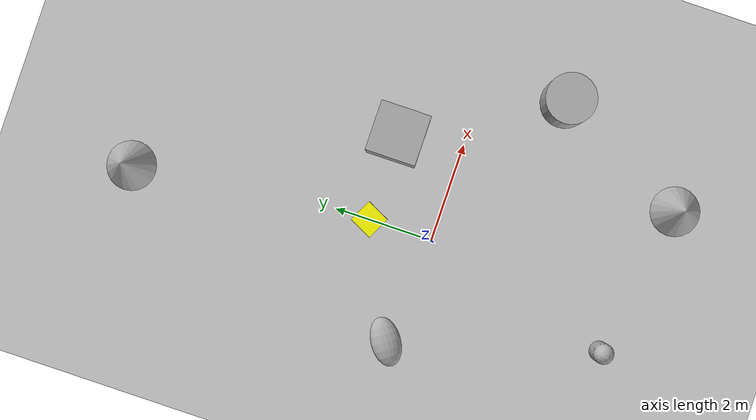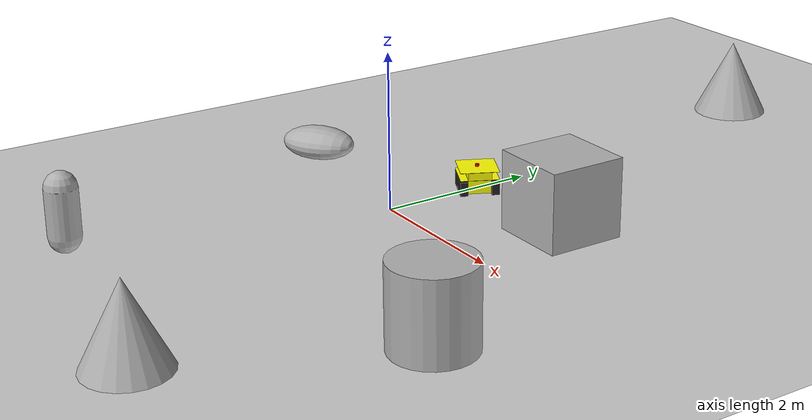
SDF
<sdf version='1.10'>
  <world name='empty'>
    <physics name='1ms' type='ignored'>
      <max_step_size>0.001</max_step_size>
      <real_time_factor>1</real_time_factor>
      <real_time_update_rate>1000</real_time_update_rate>
    </physics>
    <plugin name='gz::sim::systems::Physics' filename='gz-sim-physics-system'/>
    <plugin name='gz::sim::systems::UserCommands' filename='gz-sim-user-commands-system'/>
    <plugin name='gz::sim::systems::SceneBroadcaster' filename='gz-sim-scene-broadcaster-system'/>
    <plugin name='gz::sim::systems::Contact' filename='gz-sim-contact-system'/>
    <gravity>0 0 -9.8000000000000007</gravity>
    <magnetic_field>5.5644999999999998e-06 2.2875799999999999e-05 -4.2388400000000002e-05</magnetic_field>
    <atmosphere type='adiabatic'/>
    <scene>
      <ambient>0.400000006 0.400000006 0.400000006 1</ambient>
      <background>0.699999988 0.699999988 0.699999988 1</background>
      <shadows>true</shadows>
    </scene>
    <model name='ground_plane'>
      <static>true</static>
      <link name='link'>
        <collision name='collision'>
          <geometry>
            <plane>
              <normal>0 0 1</normal>
              <size>100 100</size>
            </plane>
          </geometry>
          <surface>
            <friction>
              <ode/>
            </friction>
            <bounce/>
            <contact/>
          </surface>
        </collision>
        <visual name='visual'>
          <geometry>
            <plane>
              <normal>0 0 1</normal>
              <size>100 100</size>
            </plane>
          </geometry>
          <material>
            <ambient>0.800000012 0.800000012 0.800000012 1</ambient>
            <diffuse>0.800000012 0.800000012 0.800000012 1</diffuse>
            <specular>0.800000012 0.800000012 0.800000012 1</specular>
          </material>
        </visual>
        <pose>0 0 0 0 0 0</pose>
        <inertial>
          <pose>0 0 0 0 0 0</pose>
          <mass>1</mass>
          <inertia>
            <ixx>1</ixx>
            <ixy>0</ixy>
            <ixz>0</ixz>
            <iyy>1</iyy>
            <iyz>0</iyz>
            <izz>1</izz>
          </inertia>
        </inertial>
        <enable_wind>false</enable_wind>
      </link>
      <pose>0 0 0 0 0 0</pose>
      <self_collide>false</self_collide>
    </model>
    <model name='my_robot'>
      <link name='base_footprint'>
        <inertial>
          <pose>0 0 0.1119644670050762 0 0 0</pose>
          <mass>5.9100000000000001</mass>
          <inertia>
            <ixx>0.43630455253807099</ixx>
            <ixy>0</ixy>
            <ixz>0</ixz>
            <iyy>0.43630455253807099</iyy>
            <iyz>0</iyz>
            <izz>0.220003</izz>
          </inertia>
        </inertial>
        <collision name='base_footprint_fixed_joint_lump__base_link_collision'>
          <pose>0 0 0.091000000000000011 0 0 0</pose>
          <geometry>
            <box>
              <size>0.315 0.27000000000000002 0.17999999999999999</size>
            </box>
          </geometry>
          <surface>
            <friction>
              <ode/>
            </friction>
            <bounce/>
            <contact/>
          </surface>
        </collision>
        <collision name='base_footprint_fixed_joint_lump__imu_link_collision_1'>
          <pose>0 0 0.091000000000000011 0 0 0</pose>
          <geometry>
            <box>
              <size>0.02 0.02 0.02</size>
            </box>
          </geometry>
          <surface>
            <contact>
              <ode/>
            </contact>
            <friction>
              <ode/>
            </friction>
            <bounce/>
          </surface>
        </collision>
        <collision name='base_footprint_fixed_joint_lump__top_plate_collision_2'>
          <pose>0 0 0.1925 0 0 0</pose>
          <geometry>
            <box>
              <size>0.5 0.5 0.0030000000000000001</size>
            </box>
          </geometry>
          <surface>
            <friction>
              <ode/>
            </friction>
            <bounce/>
            <contact/>
          </surface>
        </collision>
        <collision name='base_footprint_fixed_joint_lump__lidar_stand_collision_3'>
          <pose>0 0 0.24400000000000011 0 0 0</pose>
          <geometry>
            <box>
              <size>0.5 0.29999999999999999 0.10000000000000001</size>
            </box>
          </geometry>
          <surface>
            <friction>
              <ode/>
            </friction>
            <bounce/>
            <contact/>
          </surface>
        </collision>
        <collision name='base_footprint_fixed_joint_lump__lidar_plate_collision_4'>
          <pose>0 0 0.29549999999999998 0 0 0</pose>
          <geometry>
            <box>
              <size>0.5 0.5 0.0030000000000000001</size>
            </box>
          </geometry>
          <surface>
            <friction>
              <ode/>
            </friction>
            <bounce/>
            <contact/>
          </surface>
        </collision>
        <collision name='base_footprint_fixed_joint_lump__lidar_link_collision_5'>
          <pose>0 0 0.31200000000000011 0 0 0</pose>
          <geometry>
            <cylinder>
              <length>0.029999999999999999</length>
              <radius>0.025000000000000001</radius>
            </cylinder>
          </geometry>
          <surface>
            <contact>
              <ode/>
            </contact>
            <friction>
              <ode/>
            </friction>
            <bounce/>
          </surface>
        </collision>
        <visual name='base_footprint_fixed_joint_lump__base_link_visual'>
          <pose>0 0 0.091000000000000011 0 0 0</pose>
          <geometry>
            <box>
              <size>0.34999999999999998 0.29999999999999999 0.20000000000000001</size>
            </box>
          </geometry>
          <material>
            <diffuse>1 1 0 1</diffuse>
            <ambient>1 1 0 1</ambient>
          </material>
        </visual>
        <visual name='base_footprint_fixed_joint_lump__left_track_visual_1'>
          <pose>0 0.20000000000000001 0.081000000000000003 0 0 0</pose>
          <geometry>
            <box>
              <size>0.5 0.10000000000000001 0.17999999999999999</size>
            </box>
          </geometry>
          <material>
            <diffuse>0.125 0.125 0.125 1</diffuse>
            <ambient>0.125 0.125 0.125 1</ambient>
          </material>
        </visual>
        <visual name='base_footprint_fixed_joint_lump__right_track_visual_2'>
          <pose>0 -0.20000000000000001 0.081000000000000003 0 0 0</pose>
          <geometry>
            <box>
              <size>0.5 0.10000000000000001 0.17999999999999999</size>
            </box>
          </geometry>
          <material>
            <diffuse>0.125 0.125 0.125 1</diffuse>
            <ambient>0.125 0.125 0.125 1</ambient>
          </material>
        </visual>
        <visual name='base_footprint_fixed_joint_lump__imu_link_visual_3'>
          <pose>0 0 0.091000000000000011 0 0 0</pose>
          <geometry>
            <box>
              <size>0.02 0.02 0.02</size>
            </box>
          </geometry>
          <material>
            <diffuse>1 0 0 1</diffuse>
            <ambient>1 0 0 1</ambient>
          </material>
        </visual>
        <visual name='base_footprint_fixed_joint_lump__top_plate_visual_4'>
          <pose>0 0 0.1925 0 0 0</pose>
          <geometry>
            <box>
              <size>0.5 0.5 0.0030000000000000001</size>
            </box>
          </geometry>
          <material>
            <diffuse>1 1 0 1</diffuse>
            <ambient>1 1 0 1</ambient>
          </material>
        </visual>
        <visual name='base_footprint_fixed_joint_lump__lidar_stand_visual_5'>
          <pose>0 0 0.24400000000000011 0 0 0</pose>
          <geometry>
            <box>
              <size>0.5 0.29999999999999999 0.10000000000000001</size>
            </box>
          </geometry>
          <material>
            <diffuse>1 1 0 1</diffuse>
            <ambient>1 1 0 1</ambient>
          </material>
        </visual>
        <visual name='base_footprint_fixed_joint_lump__lidar_plate_visual_6'>
          <pose>0 0 0.29549999999999998 0 0 0</pose>
          <geometry>
            <box>
              <size>0.5 0.5 0.0030000000000000001</size>
            </box>
          </geometry>
          <material>
            <diffuse>1 1 0 1</diffuse>
            <ambient>1 1 0 1</ambient>
          </material>
        </visual>
        <visual name='base_footprint_fixed_joint_lump__lidar_link_visual_7'>
          <pose>0 0 0.31200000000000011 0 0 0</pose>
          <geometry>
            <cylinder>
              <length>0.029999999999999999</length>
              <radius>0.025000000000000001</radius>
            </cylinder>
          </geometry>
          <material>
            <diffuse>1 0 0 1</diffuse>
            <ambient>1 0 0 1</ambient>
          </material>
        </visual>
        <sensor name='imu_sensor' type='imu'>
          <pose>0 0 0.090999999999999998 0 0 0</pose>
          <topic>imu</topic>
          <update_rate>50</update_rate>
          <enable_metrics>false</enable_metrics>
          <imu>
            <orientation_reference_frame>
              <localization>CUSTOM</localization>
              <custom_rpy>0 0 0</custom_rpy>
              <grav_dir_x>1 0 0</grav_dir_x>
            </orientation_reference_frame>
            <angular_velocity>
              <x>
                <noise type='none'>
                  <mean>0</mean>
                  <stddev>0</stddev>
                  <bias_mean>0</bias_mean>
                  <bias_stddev>0</bias_stddev>
                  <dynamic_bias_stddev>0</dynamic_bias_stddev>
                  <dynamic_bias_correlation_time>0</dynamic_bias_correlation_time>
                  <precision>0</precision>
                </noise>
              </x>
              <y>
                <noise type='none'>
                  <mean>0</mean>
                  <stddev>0</stddev>
                  <bias_mean>0</bias_mean>
                  <bias_stddev>0</bias_stddev>
                  <dynamic_bias_stddev>0</dynamic_bias_stddev>
                  <dynamic_bias_correlation_time>0</dynamic_bias_correlation_time>
                  <precision>0</precision>
                </noise>
              </y>
              <z>
                <noise type='none'>
                  <mean>0</mean>
                  <stddev>0</stddev>
                  <bias_mean>0</bias_mean>
                  <bias_stddev>0</bias_stddev>
                  <dynamic_bias_stddev>0</dynamic_bias_stddev>
                  <dynamic_bias_correlation_time>0</dynamic_bias_correlation_time>
                  <precision>0</precision>
                </noise>
              </z>
            </angular_velocity>
            <linear_acceleration>
              <x>
                <noise type='none'>
                  <mean>0</mean>
                  <stddev>0</stddev>
                  <bias_mean>0</bias_mean>
                  <bias_stddev>0</bias_stddev>
                  <dynamic_bias_stddev>0</dynamic_bias_stddev>
                  <dynamic_bias_correlation_time>0</dynamic_bias_correlation_time>
                  <precision>0</precision>
                </noise>
              </x>
              <y>
                <noise type='none'>
                  <mean>0</mean>
                  <stddev>0</stddev>
                  <bias_mean>0</bias_mean>
                  <bias_stddev>0</bias_stddev>
                  <dynamic_bias_stddev>0</dynamic_bias_stddev>
                  <dynamic_bias_correlation_time>0</dynamic_bias_correlation_time>
                  <precision>0</precision>
                </noise>
              </y>
              <z>
                <noise type='none'>
                  <mean>0</mean>
                  <stddev>0</stddev>
                  <bias_mean>0</bias_mean>
                  <bias_stddev>0</bias_stddev>
                  <dynamic_bias_stddev>0</dynamic_bias_stddev>
                  <dynamic_bias_correlation_time>0</dynamic_bias_correlation_time>
                  <precision>0</precision>
                </noise>
              </z>
            </linear_acceleration>
            <enable_orientation>true</enable_orientation>
          </imu>
        </sensor>
        <sensor name='lidar_link' type='gpu_lidar'>
          <pose>0 0 0.312 0 0 0</pose>
          <topic>scan</topic>
          <update_rate>10</update_rate>
          <enable_metrics>false</enable_metrics>
          <lidar>
            <scan>
              <horizontal>
                <samples>360</samples>
                <resolution>1</resolution>
                <min_angle>-3.1400000000000001</min_angle>
                <max_angle>3.1400000000000001</max_angle>
              </horizontal>
              <vertical>
                <samples>1</samples>
                <min_angle>0</min_angle>
                <max_angle>0</max_angle>
                <resolution>1</resolution>
              </vertical>
            </scan>
            <range>
              <min>0.10000000000000001</min>
              <max>12</max>
              <resolution>0</resolution>
            </range>
            <noise>
              <type>none</type>
              <mean>0</mean>
              <stddev>0</stddev>
            </noise>
            <visibility_mask>4294967295</visibility_mask>
          </lidar>
        </sensor>
        <pose>0 0 0 0 0 0</pose>
        <enable_wind>false</enable_wind>
      </link>
      <joint name='left_wheel_joint' type='revolute'>
        <pose>0 0 0 0 0 0</pose>
        <parent>base_footprint</parent>
        <child>left_wheel</child>
        <axis>
          <xyz>0 1 0</xyz>
          <limit>
            <lower>-inf</lower>
            <upper>inf</upper>
            <effort>inf</effort>
            <velocity>inf</velocity>
            <stiffness>100000000</stiffness>
            <dissipation>1</dissipation>
          </limit>
          <dynamics>
            <spring_reference>0</spring_reference>
            <spring_stiffness>0</spring_stiffness>
            <damping>0</damping>
            <friction>0</friction>
          </dynamics>
        </axis>
      </joint>
      <link name='left_wheel'>
        <pose>0 0.25049999999999972 0.021000000000000005 3.1415926535897931 -0.87963297954926678 -3.1415926535897931</pose>
        <inertial>
          <pose>0 0 0 0 0 0</pose>
          <mass>0.5</mass>
          <inertia>
            <ixx>0.001</ixx>
            <ixy>0</ixy>
            <ixz>0</ixz>
            <iyy>0.001</iyy>
            <iyz>0</iyz>
            <izz>0.001</izz>
          </inertia>
        </inertial>
        <collision name='left_wheel_collision'>
          <pose>0 0 0 1.5707963267948959 0 0</pose>
          <geometry>
            <cylinder>
              <length>0.001</length>
              <radius>0.021000000000000001</radius>
            </cylinder>
          </geometry>
          <surface>
            <friction>
              <ode/>
            </friction>
            <bounce/>
            <contact/>
          </surface>
        </collision>
        <visual name='left_wheel_visual'>
          <pose>0 0 0 1.5707963267948959 0 0</pose>
          <geometry>
            <cylinder>
              <length>0.001</length>
              <radius>0.021000000000000001</radius>
            </cylinder>
          </geometry>
          <material>
            <diffuse>1 1 1 1</diffuse>
            <ambient>1 1 1 1</ambient>
          </material>
        </visual>
        <enable_wind>false</enable_wind>
      </link>
      <joint name='right_wheel_joint' type='revolute'>
        <pose>0 0 0 0 0 0</pose>
        <parent>base_footprint</parent>
        <child>right_wheel</child>
        <axis>
          <xyz>0 1 0</xyz>
          <limit>
            <lower>-inf</lower>
            <upper>inf</upper>
            <effort>inf</effort>
            <velocity>inf</velocity>
            <stiffness>100000000</stiffness>
            <dissipation>1</dissipation>
          </limit>
          <dynamics>
            <spring_reference>0</spring_reference>
            <spring_stiffness>0</spring_stiffness>
            <damping>0</damping>
            <friction>0</friction>
          </dynamics>
        </axis>
      </joint>
      <link name='right_wheel'>
        <pose>0 -0.25050000000000039 0.021000000000000001 -3.1415926535897931 0.93274209984940137 -3.1415926535897931</pose>
        <inertial>
          <pose>0 0 0 0 0 0</pose>
          <mass>0.5</mass>
          <inertia>
            <ixx>0.001</ixx>
            <ixy>0</ixy>
            <ixz>0</ixz>
            <iyy>0.001</iyy>
            <iyz>0</iyz>
            <izz>0.001</izz>
          </inertia>
        </inertial>
        <collision name='right_wheel_collision'>
          <pose>0 0 0 1.5707963267948959 0 0</pose>
          <geometry>
            <cylinder>
              <length>0.001</length>
              <radius>0.021000000000000001</radius>
            </cylinder>
          </geometry>
          <surface>
            <friction>
              <ode/>
            </friction>
            <bounce/>
            <contact/>
          </surface>
        </collision>
        <visual name='right_wheel_visual'>
          <pose>0 0 0 1.5707963267948959 0 0</pose>
          <geometry>
            <cylinder>
              <length>0.001</length>
              <radius>0.021000000000000001</radius>
            </cylinder>
          </geometry>
          <material>
            <diffuse>1 1 1 1</diffuse>
            <ambient>1 1 1 1</ambient>
          </material>
        </visual>
        <enable_wind>false</enable_wind>
      </link>
      <plugin name='gz::sim::systems::Sensors' filename='gz-sim-sensors-system'/>
      <plugin name='gz::sim::systems::JointStatePublisher' filename='gz-sim-joint-state-publisher-system'>
        <topic>joint_states</topic>
      </plugin>
      <plugin name='gz::sim::systems::DiffDrive' filename='gz-sim-diff-drive-system'>
        <left_joint>left_wheel_joint</left_joint>
        <right_joint>right_wheel_joint</right_joint>
        <wheel_separation>0.501</wheel_separation>
        <wheel_radius>0.021</wheel_radius>
        <topic>cmd_vel</topic>
        <odometry_topic>odom</odometry_topic>
        <tf_topic>tf</tf_topic>
        <frame_id>odom</frame_id>
        <child_frame_id>base_footprint</child_frame_id>
      </plugin>
      <frame name='base_to_left_track' attached_to='base_link'>
        <pose>0 0.20000000000000001 -0.010000000000000011 0 0 0</pose>
      </frame>
      <frame name='left_track' attached_to='base_to_left_track'>
        <pose>0 0 0 0 0 0</pose>
      </frame>
      <frame name='base_to_right_track' attached_to='base_link'>
        <pose>0 -0.20000000000000001 -0.010000000000000011 0 0 0</pose>
      </frame>
      <frame name='right_track' attached_to='base_to_right_track'>
        <pose>0 0 0 0 0 0</pose>
      </frame>
      <frame name='imu_joint' attached_to='base_link'>
        <pose>0 0 0 0 0 0</pose>
      </frame>
      <frame name='imu_link' attached_to='imu_joint'>
        <pose>0 0 0 0 0 0</pose>
      </frame>
      <frame name='lidar_joint' attached_to='lidar_plate'>
        <pose>0 0 0.016500000000000001 0 0 0</pose>
      </frame>
      <frame name='lidar_link' attached_to='lidar_joint'>
        <pose>0 0 0 0 0 0</pose>
      </frame>
      <frame name='lidar_plate_joint' attached_to='lidar_stand'>
        <pose>0 0 0.051499999999999997 0 0 0</pose>
      </frame>
      <frame name='lidar_plate' attached_to='lidar_plate_joint'>
        <pose>0 0 0 0 0 0</pose>
      </frame>
      <frame name='lidar_stand_joint' attached_to='top_plate'>
        <pose>0 0 0.051499999999999997 0 0 0</pose>
      </frame>
      <frame name='lidar_stand' attached_to='lidar_stand_joint'>
        <pose>0 0 0 0 0 0</pose>
      </frame>
      <frame name='top_plate_joint' attached_to='base_link'>
        <pose>0 0 0.10150000000000001 0 0 0</pose>
      </frame>
      <frame name='top_plate' attached_to='top_plate_joint'>
        <pose>0 0 0 0 0 0</pose>
      </frame>
      <frame name='base_footprint_joint' attached_to='base_footprint'>
        <pose>0 0 0.091000000000000011 0 0 0</pose>
      </frame>
      <frame name='base_link' attached_to='base_footprint_joint'>
        <pose>0 0 0 0 0 0</pose>
      </frame>
      <pose>0.01161862346824631 1.2954462302302412 4.1909797056284697e-07 -3.592209902051057e-13 0.0063517821011893801 2.6837377401957156</pose>
      <static>false</static>
      <self_collide>false</self_collide>
    </model>
    <model name='box'>
      <pose>1.752 1.2827599999999999 0.5 6.2287699999999997e-22 9.3279700000000006e-22 -3.63155e-22</pose>
      <link name='box_link'>
        <inertial>
          <inertia>
            <ixx>0.16666</ixx>
            <ixy>0</ixy>
            <ixz>0</ixz>
            <iyy>0.16666</iyy>
            <iyz>0</iyz>
            <izz>0.16666</izz>
          </inertia>
          <mass>1</mass>
          <pose>0 0 0 0 0 0</pose>
        </inertial>
        <collision name='box_collision'>
          <geometry>
            <box>
              <size>1 1 1</size>
            </box>
          </geometry>
          <surface>
            <friction>
              <ode/>
            </friction>
            <bounce/>
            <contact/>
          </surface>
        </collision>
        <visual name='box_visual'>
          <geometry>
            <box>
              <size>1 1 1</size>
            </box>
          </geometry>
          <material>
            <ambient>0.300000012 0.300000012 0.300000012 1</ambient>
            <diffuse>0.699999988 0.699999988 0.699999988 1</diffuse>
            <specular>1 1 1 1</specular>
          </material>
        </visual>
        <pose>0 0 0 0 0 0</pose>
        <enable_wind>false</enable_wind>
      </link>
      <static>false</static>
      <self_collide>false</self_collide>
    </model>
    <model name='cone'>
      <pose>2.0854200000000001 -4.3763399999999999 0.5 5.25415e-17 -7.7132800000000005e-10 -2.8937200000000001e-22</pose>
      <link name='cone_link'>
        <inertial>
          <inertia>
            <ixx>0.074999999999999997</ixx>
            <ixy>0</ixy>
            <ixz>0</ixz>
            <iyy>0.074999999999999997</iyy>
            <iyz>0</iyz>
            <izz>0.074999999999999997</izz>
          </inertia>
          <mass>1</mass>
          <pose>0 0 0 0 0 0</pose>
        </inertial>
        <collision name='cone_collision'>
          <geometry>
            <cone>
              <radius>0.5</radius>
              <length>1</length>
            </cone>
          </geometry>
          <surface>
            <friction>
              <ode/>
            </friction>
            <bounce/>
            <contact/>
          </surface>
        </collision>
        <visual name='cone_visual'>
          <geometry>
            <cone>
              <radius>0.5</radius>
              <length>1</length>
            </cone>
          </geometry>
          <material>
            <ambient>0.300000012 0.300000012 0.300000012 1</ambient>
            <diffuse>0.699999988 0.699999988 0.699999988 1</diffuse>
            <specular>1 1 1 1</specular>
          </material>
        </visual>
        <pose>0 0 0 0 0 0</pose>
        <enable_wind>false</enable_wind>
      </link>
      <static>false</static>
      <self_collide>false</self_collide>
    </model>
    <model name='capsule'>
      <pose>-0.993529 -3.7913299999999999 0.5 0 0 0</pose>
      <link name='capsule_link'>
        <inertial>
          <inertia>
            <ixx>0.074153999999999998</ixx>
            <ixy>0</ixy>
            <ixz>0</ixz>
            <iyy>0.074153999999999998</iyy>
            <iyz>0</iyz>
            <izz>0.018769000000000001</izz>
          </inertia>
          <mass>1</mass>
          <pose>0 0 0 0 0 0</pose>
        </inertial>
        <collision name='capsule_collision'>
          <geometry>
            <capsule>
              <radius>0.20000000000000001</radius>
              <length>0.59999999999999998</length>
            </capsule>
          </geometry>
          <surface>
            <friction>
              <ode/>
            </friction>
            <bounce/>
            <contact/>
          </surface>
        </collision>
        <visual name='capsule_visual'>
          <geometry>
            <capsule>
              <radius>0.20000000000000001</radius>
              <length>0.59999999999999998</length>
            </capsule>
          </geometry>
          <material>
            <ambient>0.300000012 0.300000012 0.300000012 1</ambient>
            <diffuse>0.699999988 0.699999988 0.699999988 1</diffuse>
            <specular>1 1 1 1</specular>
          </material>
        </visual>
        <pose>0 0 0 0 0 0</pose>
        <enable_wind>false</enable_wind>
      </link>
      <static>false</static>
      <self_collide>false</self_collide>
    </model>
    <model name='cone_0'>
      <pose>-0.47864400000000001 6.0999800000000004 0.5 5.25415e-17 -7.7132800000000005e-10 -2.8937200000000001e-22</pose>
      <link name='cone_link'>
        <inertial>
          <inertia>
            <ixx>0.074999999999999997</ixx>
            <ixy>0</ixy>
            <ixz>0</ixz>
            <iyy>0.074999999999999997</iyy>
            <iyz>0</iyz>
            <izz>0.074999999999999997</izz>
          </inertia>
          <mass>1</mass>
          <pose>0 0 0 0 0 0</pose>
        </inertial>
        <collision name='cone_collision'>
          <geometry>
            <cone>
              <radius>0.5</radius>
              <length>1</length>
            </cone>
          </geometry>
          <surface>
            <friction>
              <ode/>
            </friction>
            <bounce/>
            <contact/>
          </surface>
        </collision>
        <visual name='cone_visual'>
          <geometry>
            <cone>
              <radius>0.5</radius>
              <length>1</length>
            </cone>
          </geometry>
          <material>
            <ambient>0.300000012 0.300000012 0.300000012 1</ambient>
            <diffuse>0.699999988 0.699999988 0.699999988 1</diffuse>
            <specular>1 1 1 1</specular>
          </material>
        </visual>
        <pose>0 0 0 0 0 0</pose>
        <enable_wind>false</enable_wind>
      </link>
      <static>false</static>
      <self_collide>false</self_collide>
    </model>
    <model name='cylinder'>
      <pose>3.42333 -1.6306499999999999 0.49999900000000003 -1.4726599999999999e-19 3.2977499999999999e-19 -5.7811499999999997e-21</pose>
      <link name='cylinder_link'>
        <inertial>
          <inertia>
            <ixx>0.14580000000000001</ixx>
            <ixy>0</ixy>
            <ixz>0</ixz>
            <iyy>0.14580000000000001</iyy>
            <iyz>0</iyz>
            <izz>0.125</izz>
          </inertia>
          <mass>1</mass>
          <pose>0 0 0 0 0 0</pose>
        </inertial>
        <collision name='cylinder_collision'>
          <geometry>
            <cylinder>
              <radius>0.5</radius>
              <length>1</length>
            </cylinder>
          </geometry>
          <surface>
            <friction>
              <ode/>
            </friction>
            <bounce/>
            <contact/>
          </surface>
        </collision>
        <visual name='cylinder_visual'>
          <geometry>
            <cylinder>
              <radius>0.5</radius>
              <length>1</length>
            </cylinder>
          </geometry>
          <material>
            <ambient>0.300000012 0.300000012 0.300000012 1</ambient>
            <diffuse>0.699999988 0.699999988 0.699999988 1</diffuse>
            <specular>1 1 1 1</specular>
          </material>
        </visual>
        <pose>0 0 0 0 0 0</pose>
        <enable_wind>false</enable_wind>
      </link>
      <static>false</static>
      <self_collide>false</self_collide>
    </model>
    <model name='ellipsoid'>
      <pose>-2.1571500000000001 0.226045 0.186668 1.5708000000000006 -1.3774900000000014 -0.98258300000000065</pose>
      <link name='ellipsoid_link'>
        <inertial>
          <inertia>
            <ixx>0.068000000000000005</ixx>
            <ixy>0</ixy>
            <ixz>0</ixz>
            <iyy>0.058000000000000003</iyy>
            <iyz>0</iyz>
            <izz>0.025999999999999999</izz>
          </inertia>
          <mass>1</mass>
          <pose>0 0 0 0 0 0</pose>
        </inertial>
        <collision name='ellipsoid_collision'>
          <geometry>
            <ellipsoid>
              <radii>0.20000000000000001 0.29999999999999999 0.5</radii>
            </ellipsoid>
          </geometry>
          <surface>
            <friction>
              <ode/>
            </friction>
            <bounce/>
            <contact/>
          </surface>
        </collision>
        <visual name='ellipsoid_visual'>
          <geometry>
            <ellipsoid>
              <radii>0.20000000000000001 0.29999999999999999 0.5</radii>
            </ellipsoid>
          </geometry>
          <material>
            <ambient>0.300000012 0.300000012 0.300000012 1</ambient>
            <diffuse>0.699999988 0.699999988 0.699999988 1</diffuse>
            <specular>1 1 1 1</specular>
          </material>
        </visual>
        <pose>0 0 0 0 0 0</pose>
        <enable_wind>false</enable_wind>
      </link>
      <static>false</static>
      <self_collide>false</self_collide>
    </model>
    <light name='sun' type='directional'>
      <pose>0 0 10 0 0 0</pose>
      <cast_shadows>true</cast_shadows>
      <intensity>1</intensity>
      <direction>-0.5 0.10000000000000001 -0.90000000000000002</direction>
      <diffuse>0.800000012 0.800000012 0.800000012 1</diffuse>
      <specular>0.200000003 0.200000003 0.200000003 1</specular>
      <attenuation>
        <range>1000</range>
        <linear>0.0099999997764825821</linear>
        <constant>0.89999997615814209</constant>
        <quadratic>0.0010000000474974513</quadratic>
      </attenuation>
      <spot>
        <inner_angle>0</inner_angle>
        <outer_angle>0</outer_angle>
        <falloff>0</falloff>
      </spot>
    </light>
  </world>
</sdf>
